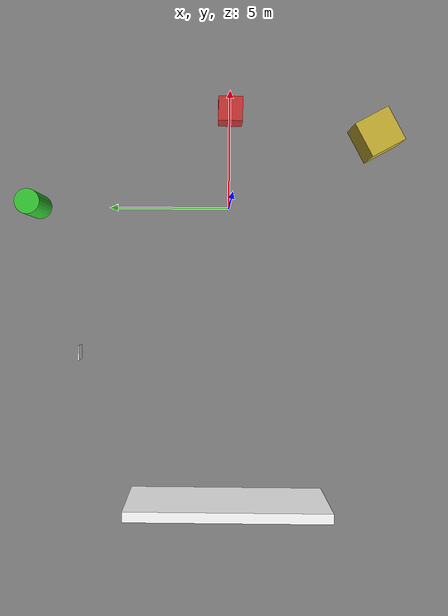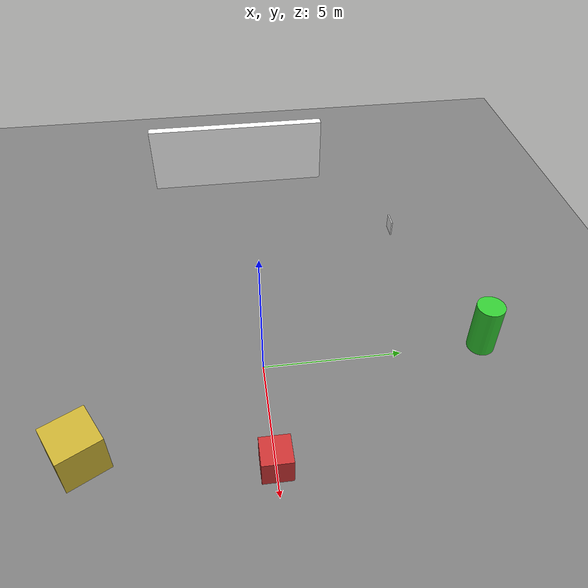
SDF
<?xml version="1.0"?>
<sdf version="1.9">
  <world name="ouster_demo_panels">

    <physics name="default" type="ignored">
      <max_step_size>0.004</max_step_size>
      <real_time_factor>1.0</real_time_factor>
      <real_time_update_rate>250</real_time_update_rate>
    </physics>

    <plugin filename="gz-sim-physics-system"
            name="gz::sim::systems::Physics"/>
    <plugin filename="gz-sim-sensors-system"
            name="gz::sim::systems::Sensors">
      <render_engine>ogre2</render_engine>
    </plugin>
    <plugin filename="gz-sim-scene-broadcaster-system"
            name="gz::sim::systems::SceneBroadcaster"/>
    <plugin filename="gz-sim-user-commands-system"
            name="gz::sim::systems::UserCommands"/>
    <plugin filename="gz-sim-imu-system"
            name="gz::sim::systems::Imu"/>

    <scene>
      <ambient>0.4 0.4 0.4 1</ambient>
      <background>0.7 0.8 0.9 1</background>
    </scene>

    <light type="directional" name="sun">
      <cast_shadows>true</cast_shadows>
      <pose>0 0 10 0 0 0</pose>
      <diffuse>1 1 1 1</diffuse>
      <specular>0.3 0.3 0.3 1</specular>
      <direction>-0.5 0.3 -1</direction>
    </light>

    <model name="ground_plane">
      <static>true</static>
      <link name="link">
        <collision name="collision">
          <geometry><plane><normal>0 0 1</normal><size>100 100</size></plane></geometry>
        </collision>
        <visual name="visual">
          <geometry><plane><normal>0 0 1</normal><size>100 100</size></plane></geometry>
          <material><ambient>0.3 0.3 0.3 1</ambient><diffuse>0.5 0.5 0.5 1</diffuse></material>
        </visual>
      </link>
    </model>

    <model name="box_near">
      <static>true</static>
      <pose>4 0 0.5 0 0 0</pose>
      <link name="link">
        <collision name="c"><geometry><box><size>1 1 1</size></box></geometry></collision>
        <visual name="v">
          <laser_retro>0.8</laser_retro>
          <geometry><box><size>1 1 1</size></box></geometry>
          <material><diffuse>0.8 0.2 0.2 1</diffuse></material></visual>
      </link>
    </model>

    <model name="cyl_mid">
      <static>true</static>
      <pose>0 8 1 0 0 0</pose>
      <link name="link">
        <collision name="c"><geometry><cylinder><radius>0.5</radius><length>2</length></cylinder></geometry></collision>
        <visual name="v">
          <laser_retro>0.5</laser_retro>
          <geometry><cylinder><radius>0.5</radius><length>2</length></cylinder></geometry>
          <material><diffuse>0.2 0.8 0.2 1</diffuse></material></visual>
      </link>
    </model>

    <model name="wall_far">
      <static>true</static>
      <pose>-12 0 1.5 0 0 0</pose>
      <link name="link">
        <collision name="c"><geometry><box><size>0.4 8 3</size></box></geometry></collision>
        <visual name="v">
          <laser_retro>0.5</laser_retro>
          <geometry><box><size>0.4 8 3</size></box></geometry>
          <material>
            <!-- Neutral factors keep the visible albedo un-tinted in Ogre2. -->
            <ambient>1 1 1 1</ambient><diffuse>1 1 1 1</diffuse>
            <pbr><metal>
            <albedo_map>../media/materials/textures/brick_graffiti.png</albedo_map>
            <metalness>0</metalness><roughness>0.85</roughness>
          </metal></pbr></material></visual>
      </link>
    </model>

    <model name="box_side">
      <static>true</static>
      <pose>3 -6 0.75 0 0 0.5</pose>
      <link name="link">
        <collision name="c"><geometry><box><size>1.5 1.5 1.5</size></box></geometry></collision>
        <visual name="v">
          <laser_retro>0.1</laser_retro>
          <geometry><box><size>1.5 1.5 1.5</size></box></geometry>
          <material><diffuse>0.8 0.7 0.2 1</diffuse></material></visual>
      </link>
    </model>

    <model name="retro_sign">
      <static>true</static>
      <pose>-6 6 1.2 0 0 0</pose>
      <link name="link">
        <collision name="c"><geometry><box><size>0.6 0.05 0.6</size></box></geometry></collision>
        <visual name="v">
          <laser_retro>8.0</laser_retro>
          <geometry><box><size>0.6 0.05 0.6</size></box></geometry>
          <material><diffuse>0.95 0.95 0.95 1</diffuse></material></visual>
      </link>
    </model>

  </world>
</sdf>
